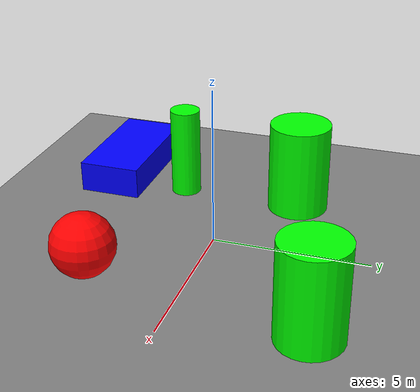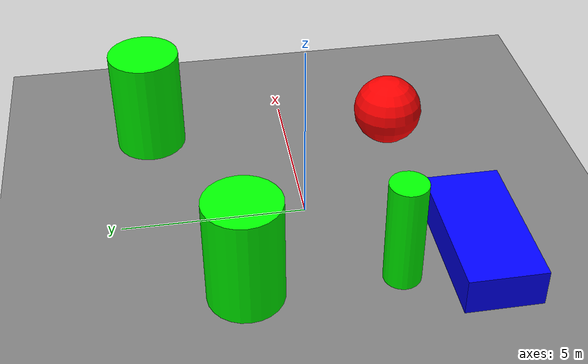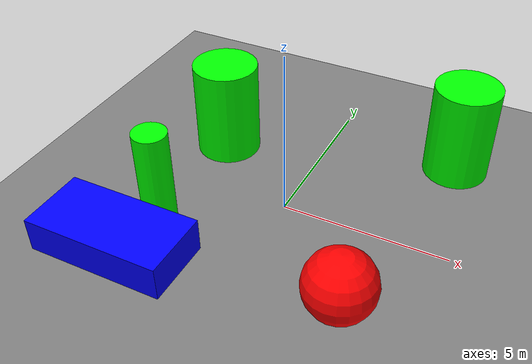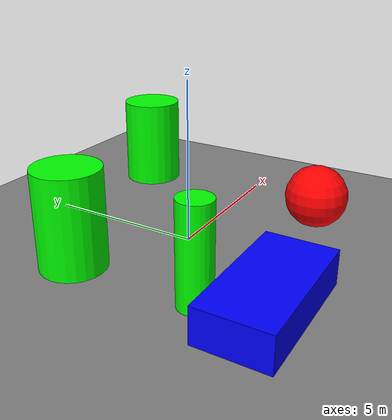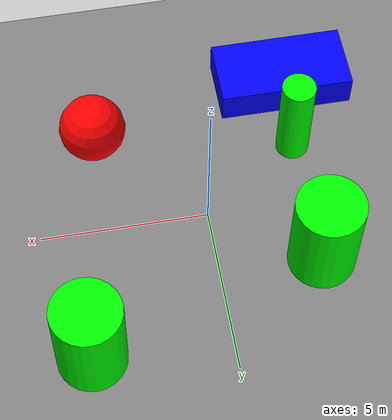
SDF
<?xml version="1.0"?>
<sdf version="1.8">
  <world name="lgpis_test_1">
    <scene>
      <ambient>1.0 1.0 1.0 1.0</ambient>
      <background>0.5 0.5 0.5 1.0</background>
      <sky>
        <time>10.0</time>
        <sunrise>6.0</sunrise>
        <sunset>18.0</sunset>
      </sky>
      <shadows>True</shadows>
      <grid>True</grid>
      <origin_visual>True</origin_visual>
    </scene>
    <light name="Sun" type="directional">
      <diffuse>0.7 0.7 0.7 0.0</diffuse>
      <specular>1.0 1.0 1.0 0.0</specular>
      <direction>-1.0 -1.0 -1.0</direction>
      <cast_shadows>True</cast_shadows>
    </light>
    <model name="ground">
      <static>True</static>
      <link name="ground">
        <pose>0 0 -0.25 0.0 0.0 0.0</pose>
        <inertial>
          <mass>1.0</mass>
          <inertia>
            <ixx>1.0</ixx>
            <iyy>1.0</iyy>
            <izz>1.0</izz>
            <ixy>0.0</ixy>
            <ixz>0.0</ixz>
            <iyz>0.0</iyz>
          </inertia>
        </inertial>
        <collision name="visual">
          <geometry>
            <box>
              <size>100.0 100.0 0.5</size>
            </box>
          </geometry>
        </collision>
        <visual name="visual">
          <geometry>
            <box>
              <size>100.0 100.0 0.5</size>
            </box>
          </geometry>
          <material>
            <ambient>0.5 0.5 0.5 1.0</ambient>
            <diffuse>0.5 0.5 0.5 1.0</diffuse>
            <specular>0 0 0 0</specular>
            <emissive>0 0 0 1</emissive>
          </material>
        </visual>
      </link>
    </model>
    <model name="Box 1">
      <static>True</static>
      <link name="Box 1">
        <pose>-3.0 -4.0 1.0 0.0 0.0 0.0</pose>
        <inertial>
          <mass>1.0</mass>
          <inertia>
            <ixx>1.0</ixx>
            <iyy>1.0</iyy>
            <izz>1.0</izz>
            <ixy>0.0</ixy>
            <ixz>0.0</ixz>
            <iyz>0.0</iyz>
          </inertia>
        </inertial>
        <collision name="visual">
          <geometry>
            <box>
              <size>4.0 2.0 1.0</size>
            </box>
          </geometry>
        </collision>
        <visual name="visual">
          <geometry>
            <box>
              <size>4.0 2.0 1.0</size>
            </box>
          </geometry>
          <material>
            <ambient>0.0 0.0 1.0 1.0</ambient>
            <diffuse>0.0 0.0 1.0 1.0</diffuse>
            <specular>0 0 0 0</specular>
            <emissive>0 0 0 1</emissive>
          </material>
        </visual>
      </link>
    </model>
    <model name="Sphere 1">
      <static>True</static>
      <link name="Sphere 1">
        <pose>3.0 -3.0 1.0 0.0 0.0 0.0</pose>
        <inertial>
          <mass>1.0</mass>
          <inertia>
            <ixx>1.0</ixx>
            <iyy>1.0</iyy>
            <izz>1.0</izz>
            <ixy>0.0</ixy>
            <ixz>0.0</ixz>
            <iyz>0.0</iyz>
          </inertia>
        </inertial>
        <collision name="visual">
          <geometry>
            <sphere>
              <radius>1.0</radius>
            </sphere>
          </geometry>
        </collision>
        <visual name="visual">
          <geometry>
            <sphere>
              <radius>1.0</radius>
            </sphere>
          </geometry>
          <material>
            <ambient>1.0 0.0 0.0 1.0</ambient>
            <diffuse>1.0 0.0 0.0 1.0</diffuse>
            <specular>0 0 0 0</specular>
            <emissive>0 0 0 1</emissive>
          </material>
        </visual>
      </link>
    </model>
    <model name="Cylinder 1">
      <static>True</static>
      <link name="Cylinder 1">
        <pose>4.0 4.0 1.5 0.0 0.0 0.0</pose>
        <inertial>
          <mass>1.0</mass>
          <inertia>
            <ixx>1.0</ixx>
            <iyy>1.0</iyy>
            <izz>1.0</izz>
            <ixy>0.0</ixy>
            <ixz>0.0</ixz>
            <iyz>0.0</iyz>
          </inertia>
        </inertial>
        <collision name="visual">
          <geometry>
            <cylinder>
              <radius>1.0</radius>
              <length>3.0</length>
            </cylinder>
          </geometry>
        </collision>
        <visual name="visual">
          <geometry>
            <cylinder>
              <radius>1.0</radius>
              <length>3.0</length>
            </cylinder>
          </geometry>
          <material>
            <ambient>0.0 1.0 0.0 1.0</ambient>
            <diffuse>0.0 1.0 0.0 1.0</diffuse>
            <specular>0 0 0 0</specular>
            <emissive>0 0 0 1</emissive>
          </material>
        </visual>
      </link>
    </model>
    <model name="Cylinder 2">
      <static>True</static>
      <link name="Cylinder 2">
        <pose>-3.0 2.0 1.5 0.0 0.0 0.0</pose>
        <inertial>
          <mass>1.0</mass>
          <inertia>
            <ixx>1.0</ixx>
            <iyy>1.0</iyy>
            <izz>1.0</izz>
            <ixy>0.0</ixy>
            <ixz>0.0</ixz>
            <iyz>0.0</iyz>
          </inertia>
        </inertial>
        <collision name="visual">
          <geometry>
            <cylinder>
              <radius>1.0</radius>
              <length>3.0</length>
            </cylinder>
          </geometry>
        </collision>
        <visual name="visual">
          <geometry>
            <cylinder>
              <radius>1.0</radius>
              <length>3.0</length>
            </cylinder>
          </geometry>
          <material>
            <ambient>0.0 1.0 0.0 1.0</ambient>
            <diffuse>0.0 1.0 0.0 1.0</diffuse>
            <specular>0 0 0 0</specular>
            <emissive>0 0 0 1</emissive>
          </material>
        </visual>
      </link>
    </model>
    <model name="Cylinder 3">
      <static>True</static>
      <link name="Cylinder 3">
        <pose>-3.0 -2.0 1.5 0.0 0.0 0.0</pose>
        <inertial>
          <mass>1.0</mass>
          <inertia>
            <ixx>1.0</ixx>
            <iyy>1.0</iyy>
            <izz>1.0</izz>
            <ixy>0.0</ixy>
            <ixz>0.0</ixz>
            <iyz>0.0</iyz>
          </inertia>
        </inertial>
        <collision name="visual">
          <geometry>
            <cylinder>
              <radius>0.5</radius>
              <length>3.0</length>
            </cylinder>
          </geometry>
        </collision>
        <visual name="visual">
          <geometry>
            <cylinder>
              <radius>0.5</radius>
              <length>3.0</length>
            </cylinder>
          </geometry>
          <material>
            <ambient>0.0 1.0 0.0 1.0</ambient>
            <diffuse>0.0 1.0 0.0 1.0</diffuse>
            <specular>0 0 0 0</specular>
            <emissive>0 0 0 1</emissive>
          </material>
        </visual>
      </link>
    </model>
  </world>
</sdf>
